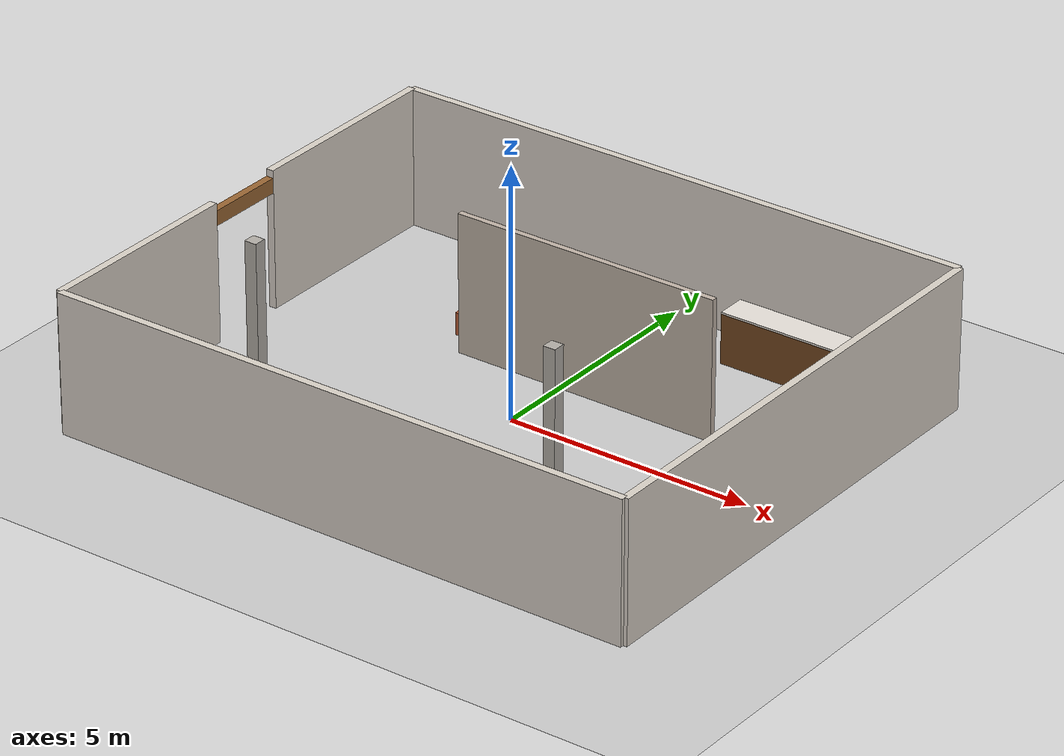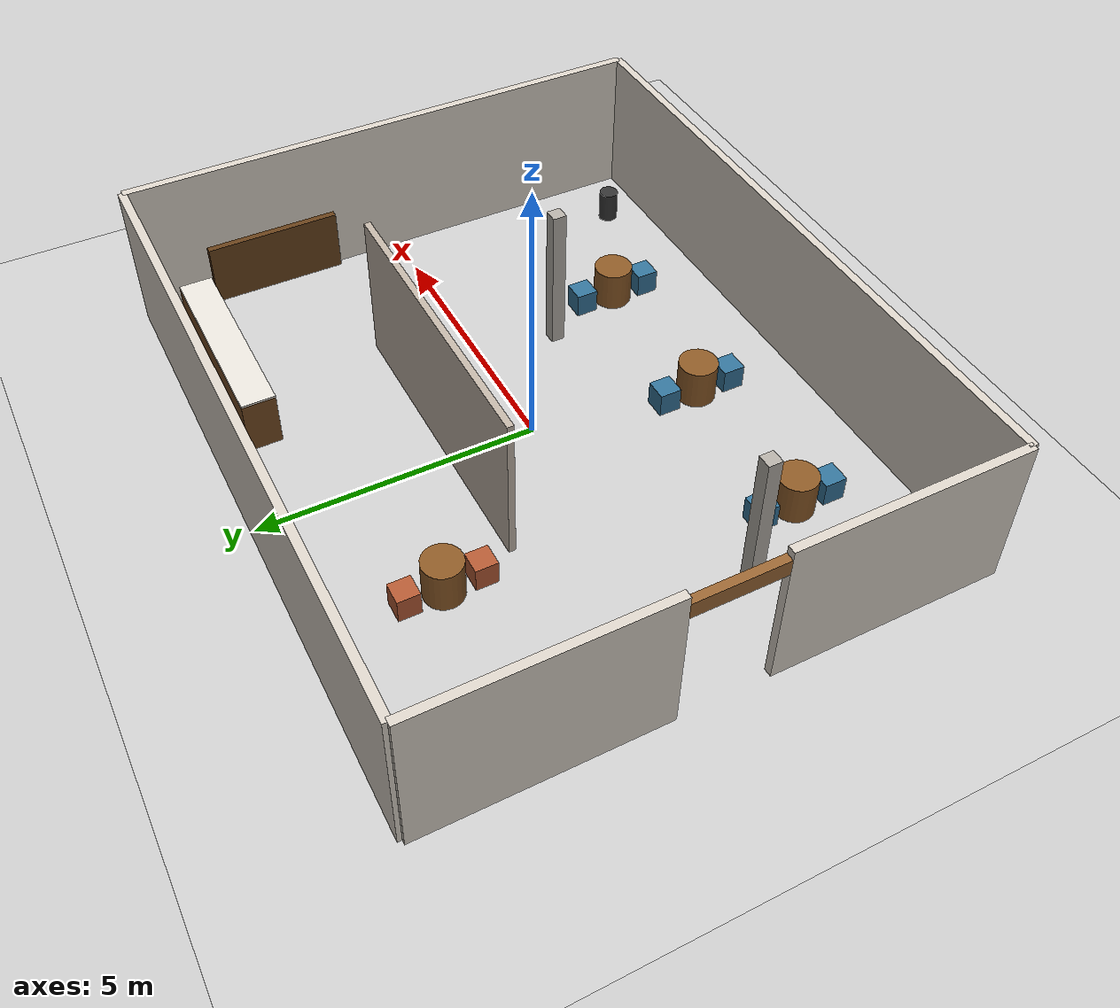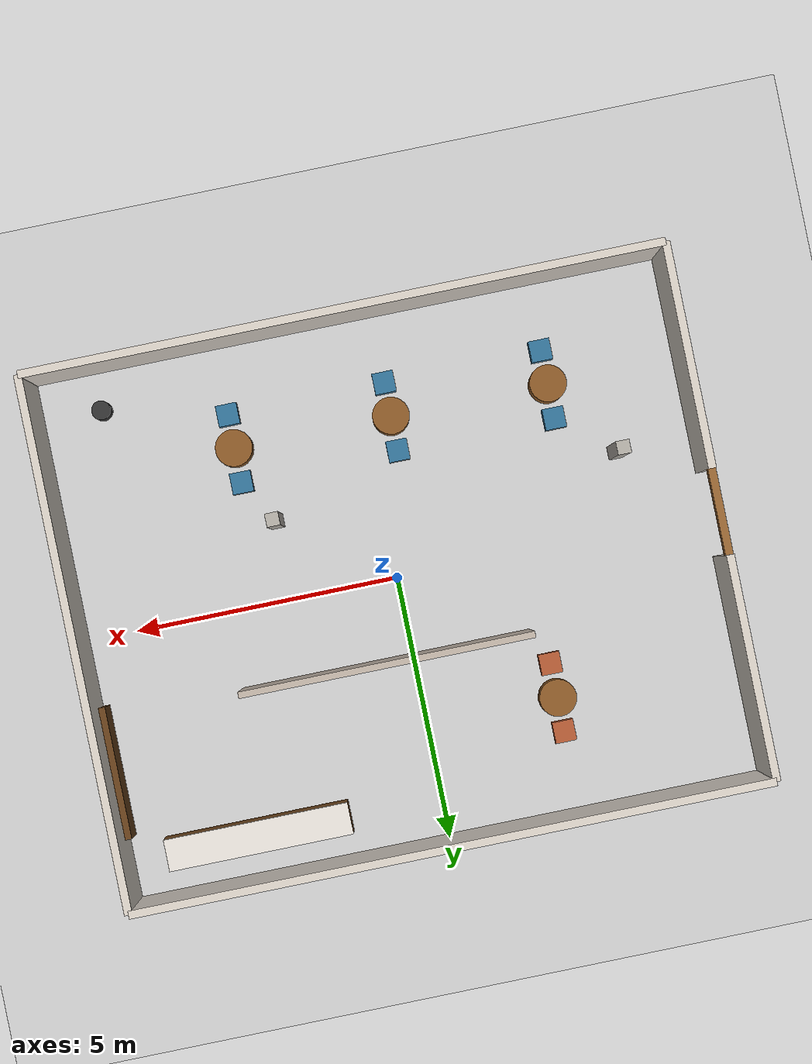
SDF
<?xml version="1.0" ?>
<sdf version="1.6">
  <world name="coffee_shop">

    <!-- ── Gazebo Sim Plugins ────────────────────────────────────────── -->
    <plugin
      filename="gz-sim-physics-system"
      name="gz::sim::systems::Physics">
    </plugin>
    <plugin
      filename="gz-sim-user-commands-system"
      name="gz::sim::systems::UserCommands">
    </plugin>
    <plugin
      filename="gz-sim-scene-broadcaster-system"
      name="gz::sim::systems::SceneBroadcaster">
    </plugin>
    <plugin
      filename="gz-sim-sensors-system"
      name="gz::sim::systems::Sensors">
      <render_engine>ogre2</render_engine>
    </plugin>

    <!-- ── Sun light (inline) ────────────────────────────────────────── -->
    <light name='sun' type='directional'>
      <cast_shadows>1</cast_shadows>
      <pose>0 0 10 0 0 0</pose>
      <diffuse>0.8 0.8 0.8 1</diffuse>
      <specular>0.8 0.8 0.8 1</specular>
      <attenuation>
        <range>1000</range>
        <constant>0.9</constant>
        <linear>0.01</linear>
        <quadratic>0.001</quadratic>
      </attenuation>
      <direction>-0.5 0.1 -0.9</direction>
    </light>

    <!-- ── Ground Plane (inline) ────────────────────────────────────── -->
    <model name='ground_plane'>
      <static>1</static>
      <link name='link'>
        <collision name='collision'>
          <geometry>
            <plane>
              <normal>0 0 1</normal>
              <size>100 100</size>
            </plane>
          </geometry>
          <max_contacts>10</max_contacts>
        </collision>
        <visual name='visual'>
          <geometry>
            <plane>
              <normal>0 0 1</normal>
              <size>100 100</size>
            </plane>
          </geometry>
          <material>
            <ambient>0.8 0.8 0.8 1</ambient>
            <diffuse>0.8 0.8 0.8 1</diffuse>
            <specular>0.8 0.8 0.8 1</specular>
          </material>
        </visual>
      </link>
    </model>

    <scene>
      <ambient>0.6 0.55 0.5 1</ambient>
      <background>0.8 0.78 0.72 1</background>
      <shadows>true</shadows>
    </scene>

    <!-- South wall -->
    <model name="wall_south">
      <static>true</static>
      <pose>0 -5 1.4 0 0 0</pose>
      <link name="link">
        <collision name="col"><geometry><box><size>12.0 0.15 2.8</size></box></geometry></collision>
        <visual name="vis"><geometry><box><size>12.0 0.15 2.8</size></box></geometry>
          <material><ambient>0.85 0.82 0.78 1</ambient><diffuse>0.85 0.82 0.78 1</diffuse></material>
        </visual>
      </link>
    </model>

    <!-- North wall -->
    <model name="wall_north">
      <static>true</static>
      <pose>0 5 1.4 0 0 0</pose>
      <link name="link">
        <collision name="col"><geometry><box><size>12.0 0.15 2.8</size></box></geometry></collision>
        <visual name="vis"><geometry><box><size>12.0 0.15 2.8</size></box></geometry>
          <material><ambient>0.85 0.82 0.78 1</ambient><diffuse>0.85 0.82 0.78 1</diffuse></material>
        </visual>
      </link>
    </model>

    <!-- West wall (with door gap 1.2 m wide at center) -->
    <!-- West wall lower segment -->
    <model name="wall_west_lower">
      <static>true</static>
      <pose>-6 -2.9 1.4 0 0 0</pose>
      <link name="link">
        <collision name="col"><geometry><box><size>0.15 4.2 2.8</size></box></geometry></collision>
        <visual name="vis"><geometry><box><size>0.15 4.2 2.8</size></box></geometry>
          <material><ambient>0.85 0.82 0.78 1</ambient><diffuse>0.85 0.82 0.78 1</diffuse></material>
        </visual>
      </link>
    </model>
    <!-- West wall upper segment -->
    <model name="wall_west_upper">
      <static>true</static>
      <pose>-6 2.9 1.4 0 0 0</pose>
      <link name="link">
        <collision name="col"><geometry><box><size>0.15 4.2 2.8</size></box></geometry></collision>
        <visual name="vis"><geometry><box><size>0.15 4.2 2.8</size></box></geometry>
          <material><ambient>0.85 0.82 0.78 1</ambient><diffuse>0.85 0.82 0.78 1</diffuse></material>
        </visual>
      </link>
    </model>
    <!-- Door lintel above gap -->
    <model name="door_lintel">
      <static>true</static>
      <pose>-6 0 2.5 0 0 0</pose>
      <link name="link">
        <collision name="col"><geometry><box><size>0.15 1.6 0.3</size></box></geometry></collision>
        <visual name="vis"><geometry><box><size>0.15 1.6 0.3</size></box></geometry>
          <material><ambient>0.6 0.4 0.2 1</ambient><diffuse>0.6 0.4 0.2 1</diffuse></material>
        </visual>
      </link>
    </model>

    <!-- East wall -->
    <model name="wall_east">
      <static>true</static>
      <pose>6 0 1.4 0 0 0</pose>
      <link name="link">
        <collision name="col"><geometry><box><size>0.15 10.0 2.8</size></box></geometry></collision>
        <visual name="vis"><geometry><box><size>0.15 10.0 2.8</size></box></geometry>
          <material><ambient>0.85 0.82 0.78 1</ambient><diffuse>0.85 0.82 0.78 1</diffuse></material>
        </visual>
      </link>
    </model>

    <model name="divider_west">
      <static>true</static>
      <pose>0.5 1.5 1.4 0 0 0</pose>
      <link name="link">
        <collision name="col"><geometry><box><size>5.5 0.12 2.8</size></box></geometry></collision>
        <visual name="vis"><geometry><box><size>5.5 0.12 2.8</size></box></geometry>
          <material><ambient>0.75 0.7 0.65 1</ambient><diffuse>0.75 0.7 0.65 1</diffuse></material>
        </visual>
      </link>
    </model>

    <model name="counter">
      <static>true</static>
      <pose>3.5 4.2 0.5 0 0 0</pose>
      <link name="link">
        <collision name="col"><geometry><box><size>3.5 0.6 1.0</size></box></geometry></collision>
        <visual name="vis"><geometry><box><size>3.5 0.6 1.0</size></box></geometry>
          <material><ambient>0.45 0.28 0.12 1</ambient><diffuse>0.45 0.28 0.12 1</diffuse></material>
        </visual>
      </link>
    </model>

    <!-- Counter top surface -->
    <model name="counter_top">
      <static>true</static>
      <pose>3.5 4.2 1.02 0 0 0</pose>
      <link name="link">
        <collision name="col"><geometry><box><size>3.5 0.6 0.04</size></box></geometry></collision>
        <visual name="vis"><geometry><box><size>3.5 0.6 0.04</size></box></geometry>
          <material><ambient>0.9 0.88 0.85 1</ambient><diffuse>0.9 0.88 0.85 1</diffuse></material>
        </visual>
      </link>
    </model>

    <!-- Table 1 — south-west zone -->
    <model name="table_1">
      <static>true</static>
      <pose>-3.5 -3.0 0.375 0 0 0</pose>
      <link name="link">
        <collision name="col"><geometry><cylinder><radius>0.35</radius><length>0.75</length></cylinder></geometry></collision>
        <visual name="vis"><geometry><cylinder><radius>0.35</radius><length>0.75</length></cylinder></geometry>
          <material><ambient>0.55 0.35 0.15 1</ambient><diffuse>0.55 0.35 0.15 1</diffuse></material>
        </visual>
      </link>
    </model>
    <model name="chair_1a"><static>true</static><pose>-3.5 -2.35 0.225 0 0 0</pose>
      <link name="link"><collision name="col"><geometry><box><size>0.4 0.4 0.45</size></box></geometry></collision>
        <visual name="vis"><geometry><box><size>0.4 0.4 0.45</size></box></geometry>
          <material><ambient>0.2 0.45 0.6 1</ambient><diffuse>0.2 0.45 0.6 1</diffuse></material></visual></link></model>
    <model name="chair_1b"><static>true</static><pose>-3.5 -3.65 0.225 0 0 0</pose>
      <link name="link"><collision name="col"><geometry><box><size>0.4 0.4 0.45</size></box></geometry></collision>
        <visual name="vis"><geometry><box><size>0.4 0.4 0.45</size></box></geometry>
          <material><ambient>0.2 0.45 0.6 1</ambient><diffuse>0.2 0.45 0.6 1</diffuse></material></visual></link></model>

    <!-- Table 2 — south center -->
    <model name="table_2">
      <static>true</static>
      <pose>-0.5 -3.0 0.375 0 0 0</pose>
      <link name="link">
        <collision name="col"><geometry><cylinder><radius>0.35</radius><length>0.75</length></cylinder></geometry></collision>
        <visual name="vis"><geometry><cylinder><radius>0.35</radius><length>0.75</length></cylinder></geometry>
          <material><ambient>0.55 0.35 0.15 1</ambient><diffuse>0.55 0.35 0.15 1</diffuse></material>
        </visual>
      </link>
    </model>
    <model name="chair_2a"><static>true</static><pose>-0.5 -2.35 0.225 0 0 0</pose>
      <link name="link"><collision name="col"><geometry><box><size>0.4 0.4 0.45</size></box></geometry></collision>
        <visual name="vis"><geometry><box><size>0.4 0.4 0.45</size></box></geometry>
          <material><ambient>0.2 0.45 0.6 1</ambient><diffuse>0.2 0.45 0.6 1</diffuse></material></visual></link></model>
    <model name="chair_2b"><static>true</static><pose>-0.5 -3.65 0.225 0 0 0</pose>
      <link name="link"><collision name="col"><geometry><box><size>0.4 0.4 0.45</size></box></geometry></collision>
        <visual name="vis"><geometry><box><size>0.4 0.4 0.45</size></box></geometry>
          <material><ambient>0.2 0.45 0.6 1</ambient><diffuse>0.2 0.45 0.6 1</diffuse></material></visual></link></model>

    <!-- Table 3 — south east -->
    <model name="table_3">
      <static>true</static>
      <pose>2.5 -3.0 0.375 0 0 0</pose>
      <link name="link">
        <collision name="col"><geometry><cylinder><radius>0.35</radius><length>0.75</length></cylinder></geometry></collision>
        <visual name="vis"><geometry><cylinder><radius>0.35</radius><length>0.75</length></cylinder></geometry>
          <material><ambient>0.55 0.35 0.15 1</ambient><diffuse>0.55 0.35 0.15 1</diffuse></material>
        </visual>
      </link>
    </model>
    <model name="chair_3a"><static>true</static><pose>2.5 -2.35 0.225 0 0 0</pose>
      <link name="link"><collision name="col"><geometry><box><size>0.4 0.4 0.45</size></box></geometry></collision>
        <visual name="vis"><geometry><box><size>0.4 0.4 0.45</size></box></geometry>
          <material><ambient>0.2 0.45 0.6 1</ambient><diffuse>0.2 0.45 0.6 1</diffuse></material></visual></link></model>
    <model name="chair_3b"><static>true</static><pose>2.5 -3.65 0.225 0 0 0</pose>
      <link name="link"><collision name="col"><geometry><box><size>0.4 0.4 0.45</size></box></geometry></collision>
        <visual name="vis"><geometry><box><size>0.4 0.4 0.45</size></box></geometry>
          <material><ambient>0.2 0.45 0.6 1</ambient><diffuse>0.2 0.45 0.6 1</diffuse></material></visual></link></model>

    <!-- Table 4 — north seating (lounge) -->
    <model name="table_4">
      <static>true</static>
      <pose>-2.5 2.8 0.375 0 0 0</pose>
      <link name="link">
        <collision name="col"><geometry><cylinder><radius>0.35</radius><length>0.75</length></cylinder></geometry></collision>
        <visual name="vis"><geometry><cylinder><radius>0.35</radius><length>0.75</length></cylinder></geometry>
          <material><ambient>0.55 0.35 0.15 1</ambient><diffuse>0.55 0.35 0.15 1</diffuse></material>
        </visual>
      </link>
    </model>
    <model name="chair_4a"><static>true</static><pose>-2.5 2.15 0.225 0 0 0</pose>
      <link name="link"><collision name="col"><geometry><box><size>0.4 0.4 0.45</size></box></geometry></collision>
        <visual name="vis"><geometry><box><size>0.4 0.4 0.45</size></box></geometry>
          <material><ambient>0.7 0.35 0.2 1</ambient><diffuse>0.7 0.35 0.2 1</diffuse></material></visual></link></model>
    <model name="chair_4b"><static>true</static><pose>-2.5 3.45 0.225 0 0 0</pose>
      <link name="link"><collision name="col"><geometry><box><size>0.4 0.4 0.45</size></box></geometry></collision>
        <visual name="vis"><geometry><box><size>0.4 0.4 0.45</size></box></geometry>
          <material><ambient>0.7 0.35 0.2 1</ambient><diffuse>0.7 0.35 0.2 1</diffuse></material></visual></link></model>

    <!-- ═══════════════════════════════════════════════════════════════
         SUPPORT PILLARS  (0.25 × 0.25 × 2.8 m)
    ═══════════════════════════════════════════════════════════════════ -->
    <model name="pillar_sw">
      <static>true</static>
      <pose>-4.5 -1.5 1.4 0 0 0</pose>
      <link name="link">
        <collision name="col"><geometry><box><size>0.25 0.25 2.8</size></box></geometry></collision>
        <visual name="vis"><geometry><box><size>0.25 0.25 2.8</size></box></geometry>
          <material><ambient>0.7 0.68 0.65 1</ambient><diffuse>0.7 0.68 0.65 1</diffuse></material>
        </visual>
      </link>
    </model>
    <model name="pillar_se">
      <static>true</static>
      <pose>2.0 -1.5 1.4 0 0 0</pose>
      <link name="link">
        <collision name="col"><geometry><box><size>0.25 0.25 2.8</size></box></geometry></collision>
        <visual name="vis"><geometry><box><size>0.25 0.25 2.8</size></box></geometry>
          <material><ambient>0.7 0.68 0.65 1</ambient><diffuse>0.7 0.68 0.65 1</diffuse></material>
        </visual>
      </link>
    </model>

    <!-- ═══════════════════════════════════════════════════════════════
         DISPLAY SHELF  (along east wall, near counter)
    ═══════════════════════════════════════════════════════════════════ -->
    <model name="display_shelf">
      <static>true</static>
      <pose>5.9 2.5 0.6 0 0 0</pose>
      <link name="link">
        <collision name="col"><geometry><box><size>0.2 2.5 1.2</size></box></geometry></collision>
        <visual name="vis"><geometry><box><size>0.2 2.5 1.2</size></box></geometry>
          <material><ambient>0.4 0.25 0.1 1</ambient><diffuse>0.4 0.25 0.1 1</diffuse></material>
        </visual>
      </link>
    </model>

    <!-- ═══════════════════════════════════════════════════════════════
         TRASH / WASTE BIN  (cylinder near south-east)
    ═══════════════════════════════════════════════════════════════════ -->
    <model name="trash_bin">
      <static>true</static>
      <pose>4.8 -4.2 0.3 0 0 0</pose>
      <link name="link">
        <collision name="col"><geometry><cylinder><radius>0.18</radius><length>0.6</length></cylinder></geometry></collision>
        <visual name="vis"><geometry><cylinder><radius>0.18</radius><length>0.6</length></cylinder></geometry>
          <material><ambient>0.2 0.2 0.2 1</ambient><diffuse>0.2 0.2 0.2 1</diffuse></material>
        </visual>
      </link>
    </model>

    <!-- physics -->
    <physics type="ode">
      <real_time_update_rate>1000.0</real_time_update_rate>
      <max_step_size>0.001</max_step_size>
      <real_time_factor>1</real_time_factor>
    </physics>

  </world>
</sdf>
